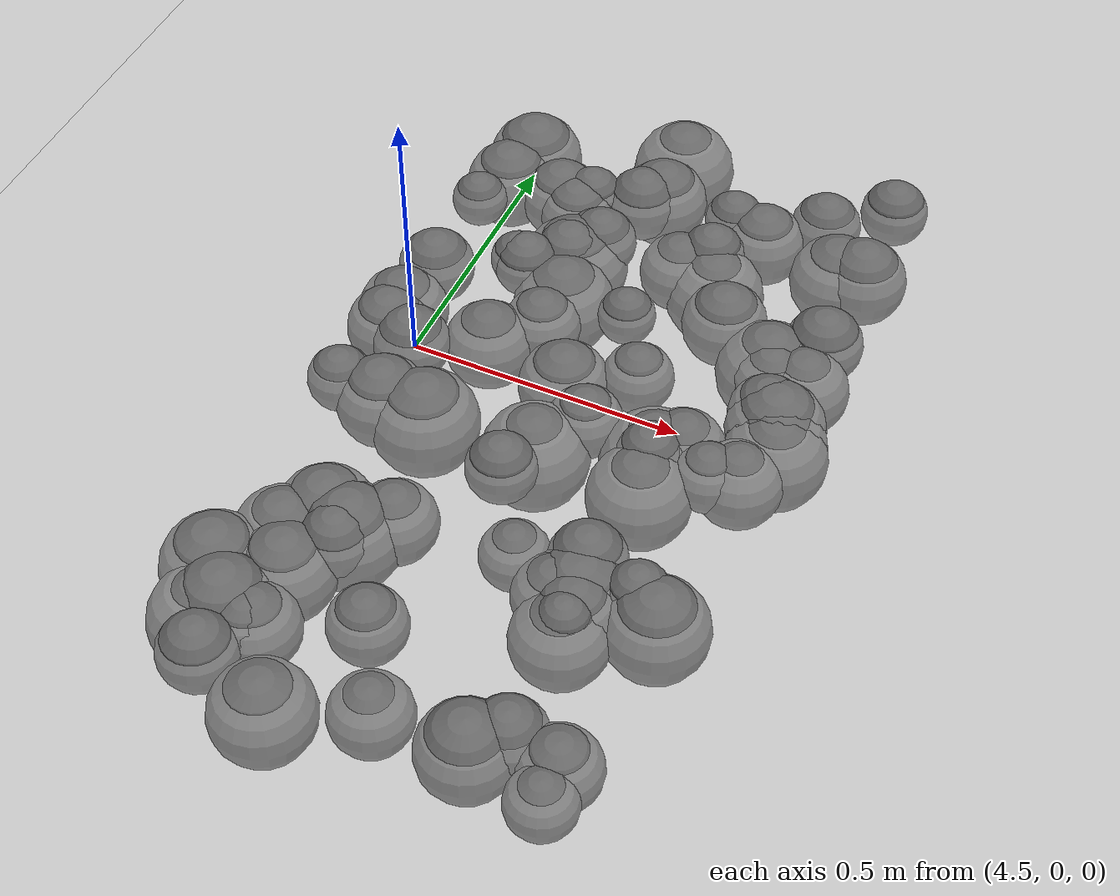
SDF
<sdf version="1.6">
 <world name="high_freq_world">
  <model name="ground_plane">
   <static>true</static>
   <link name="link">
    <collision name="collision">
     <geometry><plane><normal>0 0 1</normal><size>100 100</size></plane></geometry>
     <surface><friction><ode><mu>100.0</mu><mu2>100.0</mu2></ode></friction></surface>
    </collision>
    <visual name="visual">
     <geometry><plane><normal>0 0 1</normal><size>100 100</size></plane></geometry>
     <material><ambient>0.8 0.8 0.8 1</ambient><diffuse>0.8 0.8 0.8 1</diffuse></material>
    </visual>
   </link>
  </model>
  <model name="bump_2">
   <static>true</static>
   <pose>4.587 0.118 -0.067 0 0 0</pose>
   <link name="link">
    <collision name="collision">
     <geometry><sphere><radius>0.082</radius></sphere></geometry>
     <surface><friction><ode><mu>100.0</mu><mu2>100.0</mu2></ode></friction></surface>
    </collision>
    <visual name="visual">
     <geometry><sphere><radius>0.082</radius></sphere></geometry>
     <material><ambient>0.3 0.3 0.3 1</ambient><diffuse>0.4 0.4 0.4 1</diffuse></material>
    </visual>
   </link>
  </model>
  <model name="bump_4">
   <static>true</static>
   <pose>4.720 0.723 -0.085 0 0 0</pose>
   <link name="link">
    <collision name="collision">
     <geometry><sphere><radius>0.098</radius></sphere></geometry>
     <surface><friction><ode><mu>100.0</mu><mu2>100.0</mu2></ode></friction></surface>
    </collision>
    <visual name="visual">
     <geometry><sphere><radius>0.098</radius></sphere></geometry>
     <material><ambient>0.3 0.3 0.3 1</ambient><diffuse>0.4 0.4 0.4 1</diffuse></material>
    </visual>
   </link>
  </model>
  <model name="bump_5">
   <static>true</static>
   <pose>4.611 0.526 -0.031 0 0 0</pose>
   <link name="link">
    <collision name="collision">
     <geometry><sphere><radius>0.056</radius></sphere></geometry>
     <surface><friction><ode><mu>100.0</mu><mu2>100.0</mu2></ode></friction></surface>
    </collision>
    <visual name="visual">
     <geometry><sphere><radius>0.056</radius></sphere></geometry>
     <material><ambient>0.3 0.3 0.3 1</ambient><diffuse>0.4 0.4 0.4 1</diffuse></material>
    </visual>
   </link>
  </model>
  <model name="bump_6">
   <static>true</static>
   <pose>4.596 0.488 -0.052 0 0 0</pose>
   <link name="link">
    <collision name="collision">
     <geometry><sphere><radius>0.072</radius></sphere></geometry>
     <surface><friction><ode><mu>100.0</mu><mu2>100.0</mu2></ode></friction></surface>
    </collision>
    <visual name="visual">
     <geometry><sphere><radius>0.072</radius></sphere></geometry>
     <material><ambient>0.3 0.3 0.3 1</ambient><diffuse>0.4 0.4 0.4 1</diffuse></material>
    </visual>
   </link>
  </model>
  <model name="bump_8">
   <static>true</static>
   <pose>4.639 0.379 -0.080 0 0 0</pose>
   <link name="link">
    <collision name="collision">
     <geometry><sphere><radius>0.100</radius></sphere></geometry>
     <surface><friction><ode><mu>100.0</mu><mu2>100.0</mu2></ode></friction></surface>
    </collision>
    <visual name="visual">
     <geometry><sphere><radius>0.100</radius></sphere></geometry>
     <material><ambient>0.3 0.3 0.3 1</ambient><diffuse>0.4 0.4 0.4 1</diffuse></material>
    </visual>
   </link>
  </model>
  <model name="bump_12">
   <static>true</static>
   <pose>4.964 -0.004 -0.087 0 0 0</pose>
   <link name="link">
    <collision name="collision">
     <geometry><sphere><radius>0.099</radius></sphere></geometry>
     <surface><friction><ode><mu>100.0</mu><mu2>100.0</mu2></ode></friction></surface>
    </collision>
    <visual name="visual">
     <geometry><sphere><radius>0.099</radius></sphere></geometry>
     <material><ambient>0.3 0.3 0.3 1</ambient><diffuse>0.4 0.4 0.4 1</diffuse></material>
    </visual>
   </link>
  </model>
  <model name="bump_29">
   <static>true</static>
   <pose>4.982 -0.423 -0.026 0 0 0</pose>
   <link name="link">
    <collision name="collision">
     <geometry><sphere><radius>0.051</radius></sphere></geometry>
     <surface><friction><ode><mu>100.0</mu><mu2>100.0</mu2></ode></friction></surface>
    </collision>
    <visual name="visual">
     <geometry><sphere><radius>0.051</radius></sphere></geometry>
     <material><ambient>0.3 0.3 0.3 1</ambient><diffuse>0.4 0.4 0.4 1</diffuse></material>
    </visual>
   </link>
  </model>
  <model name="bump_30">
   <static>true</static>
   <pose>4.972 -0.091 -0.081 0 0 0</pose>
   <link name="link">
    <collision name="collision">
     <geometry><sphere><radius>0.094</radius></sphere></geometry>
     <surface><friction><ode><mu>100.0</mu><mu2>100.0</mu2></ode></friction></surface>
    </collision>
    <visual name="visual">
     <geometry><sphere><radius>0.094</radius></sphere></geometry>
     <material><ambient>0.3 0.3 0.3 1</ambient><diffuse>0.4 0.4 0.4 1</diffuse></material>
    </visual>
   </link>
  </model>
  <model name="bump_31">
   <static>true</static>
   <pose>4.906 0.418 -0.081 0 0 0</pose>
   <link name="link">
    <collision name="collision">
     <geometry><sphere><radius>0.092</radius></sphere></geometry>
     <surface><friction><ode><mu>100.0</mu><mu2>100.0</mu2></ode></friction></surface>
    </collision>
    <visual name="visual">
     <geometry><sphere><radius>0.092</radius></sphere></geometry>
     <material><ambient>0.3 0.3 0.3 1</ambient><diffuse>0.4 0.4 0.4 1</diffuse></material>
    </visual>
   </link>
  </model>
  <model name="bump_33">
   <static>true</static>
   <pose>4.525 -0.613 -0.062 0 0 0</pose>
   <link name="link">
    <collision name="collision">
     <geometry><sphere><radius>0.077</radius></sphere></geometry>
     <surface><friction><ode><mu>100.0</mu><mu2>100.0</mu2></ode></friction></surface>
    </collision>
    <visual name="visual">
     <geometry><sphere><radius>0.077</radius></sphere></geometry>
     <material><ambient>0.3 0.3 0.3 1</ambient><diffuse>0.4 0.4 0.4 1</diffuse></material>
    </visual>
   </link>
  </model>
  <model name="bump_35">
   <static>true</static>
   <pose>5.151 0.085 -0.081 0 0 0</pose>
   <link name="link">
    <collision name="collision">
     <geometry><sphere><radius>0.094</radius></sphere></geometry>
     <surface><friction><ode><mu>100.0</mu><mu2>100.0</mu2></ode></friction></surface>
    </collision>
    <visual name="visual">
     <geometry><sphere><radius>0.094</radius></sphere></geometry>
     <material><ambient>0.3 0.3 0.3 1</ambient><diffuse>0.4 0.4 0.4 1</diffuse></material>
    </visual>
   </link>
  </model>
  <model name="bump_38">
   <static>true</static>
   <pose>4.830 0.432 -0.063 0 0 0</pose>
   <link name="link">
    <collision name="collision">
     <geometry><sphere><radius>0.075</radius></sphere></geometry>
     <surface><friction><ode><mu>100.0</mu><mu2>100.0</mu2></ode></friction></surface>
    </collision>
    <visual name="visual">
     <geometry><sphere><radius>0.075</radius></sphere></geometry>
     <material><ambient>0.3 0.3 0.3 1</ambient><diffuse>0.4 0.4 0.4 1</diffuse></material>
    </visual>
   </link>
  </model>
  <model name="bump_46">
   <static>true</static>
   <pose>4.871 0.138 -0.050 0 0 0</pose>
   <link name="link">
    <collision name="collision">
     <geometry><sphere><radius>0.065</radius></sphere></geometry>
     <surface><friction><ode><mu>100.0</mu><mu2>100.0</mu2></ode></friction></surface>
    </collision>
    <visual name="visual">
     <geometry><sphere><radius>0.065</radius></sphere></geometry>
     <material><ambient>0.3 0.3 0.3 1</ambient><diffuse>0.4 0.4 0.4 1</diffuse></material>
    </visual>
   </link>
  </model>
  <model name="bump_51">
   <static>true</static>
   <pose>4.510 -0.489 -0.069 0 0 0</pose>
   <link name="link">
    <collision name="collision">
     <geometry><sphere><radius>0.088</radius></sphere></geometry>
     <surface><friction><ode><mu>100.0</mu><mu2>100.0</mu2></ode></friction></surface>
    </collision>
    <visual name="visual">
     <geometry><sphere><radius>0.088</radius></sphere></geometry>
     <material><ambient>0.3 0.3 0.3 1</ambient><diffuse>0.4 0.4 0.4 1</diffuse></material>
    </visual>
   </link>
  </model>
  <model name="bump_52">
   <static>true</static>
   <pose>4.798 0.255 -0.031 0 0 0</pose>
   <link name="link">
    <collision name="collision">
     <geometry><sphere><radius>0.053</radius></sphere></geometry>
     <surface><friction><ode><mu>100.0</mu><mu2>100.0</mu2></ode></friction></surface>
    </collision>
    <visual name="visual">
     <geometry><sphere><radius>0.053</radius></sphere></geometry>
     <material><ambient>0.3 0.3 0.3 1</ambient><diffuse>0.4 0.4 0.4 1</diffuse></material>
    </visual>
   </link>
  </model>
  <model name="bump_66">
   <static>true</static>
   <pose>5.149 0.722 -0.035 0 0 0</pose>
   <link name="link">
    <collision name="collision">
     <geometry><sphere><radius>0.063</radius></sphere></geometry>
     <surface><friction><ode><mu>100.0</mu><mu2>100.0</mu2></ode></friction></surface>
    </collision>
    <visual name="visual">
     <geometry><sphere><radius>0.063</radius></sphere></geometry>
     <material><ambient>0.3 0.3 0.3 1</ambient><diffuse>0.4 0.4 0.4 1</diffuse></material>
    </visual>
   </link>
  </model>
  <model name="bump_73">
   <static>true</static>
   <pose>4.769 -0.077 -0.086 0 0 0</pose>
   <link name="link">
    <collision name="collision">
     <geometry><sphere><radius>0.098</radius></sphere></geometry>
     <surface><friction><ode><mu>100.0</mu><mu2>100.0</mu2></ode></friction></surface>
    </collision>
    <visual name="visual">
     <geometry><sphere><radius>0.098</radius></sphere></geometry>
     <material><ambient>0.3 0.3 0.3 1</ambient><diffuse>0.4 0.4 0.4 1</diffuse></material>
    </visual>
   </link>
  </model>
  <model name="bump_85">
   <static>true</static>
   <pose>4.946 0.562 -0.059 0 0 0</pose>
   <link name="link">
    <collision name="collision">
     <geometry><sphere><radius>0.078</radius></sphere></geometry>
     <surface><friction><ode><mu>100.0</mu><mu2>100.0</mu2></ode></friction></surface>
    </collision>
    <visual name="visual">
     <geometry><sphere><radius>0.078</radius></sphere></geometry>
     <material><ambient>0.3 0.3 0.3 1</ambient><diffuse>0.4 0.4 0.4 1</diffuse></material>
    </visual>
   </link>
  </model>
  <model name="bump_89">
   <static>true</static>
   <pose>4.628 -0.326 -0.062 0 0 0</pose>
   <link name="link">
    <collision name="collision">
     <geometry><sphere><radius>0.075</radius></sphere></geometry>
     <surface><friction><ode><mu>100.0</mu><mu2>100.0</mu2></ode></friction></surface>
    </collision>
    <visual name="visual">
     <geometry><sphere><radius>0.075</radius></sphere></geometry>
     <material><ambient>0.3 0.3 0.3 1</ambient><diffuse>0.4 0.4 0.4 1</diffuse></material>
    </visual>
   </link>
  </model>
  <model name="bump_90">
   <static>true</static>
   <pose>5.084 -0.728 -0.051 0 0 0</pose>
   <link name="link">
    <collision name="collision">
     <geometry><sphere><radius>0.061</radius></sphere></geometry>
     <surface><friction><ode><mu>100.0</mu><mu2>100.0</mu2></ode></friction></surface>
    </collision>
    <visual name="visual">
     <geometry><sphere><radius>0.061</radius></sphere></geometry>
     <material><ambient>0.3 0.3 0.3 1</ambient><diffuse>0.4 0.4 0.4 1</diffuse></material>
    </visual>
   </link>
  </model>
  <model name="bump_95">
   <static>true</static>
   <pose>4.570 -0.380 -0.069 0 0 0</pose>
   <link name="link">
    <collision name="collision">
     <geometry><sphere><radius>0.095</radius></sphere></geometry>
     <surface><friction><ode><mu>100.0</mu><mu2>100.0</mu2></ode></friction></surface>
    </collision>
    <visual name="visual">
     <geometry><sphere><radius>0.095</radius></sphere></geometry>
     <material><ambient>0.3 0.3 0.3 1</ambient><diffuse>0.4 0.4 0.4 1</diffuse></material>
    </visual>
   </link>
  </model>
  <model name="bump_100">
   <static>true</static>
   <pose>4.431 -0.617 -0.088 0 0 0</pose>
   <link name="link">
    <collision name="collision">
     <geometry><sphere><radius>0.099</radius></sphere></geometry>
     <surface><friction><ode><mu>100.0</mu><mu2>100.0</mu2></ode></friction></surface>
    </collision>
    <visual name="visual">
     <geometry><sphere><radius>0.099</radius></sphere></geometry>
     <material><ambient>0.3 0.3 0.3 1</ambient><diffuse>0.4 0.4 0.4 1</diffuse></material>
    </visual>
   </link>
  </model>
  <model name="bump_108">
   <static>true</static>
   <pose>4.457 -0.597 -0.062 0 0 0</pose>
   <link name="link">
    <collision name="collision">
     <geometry><sphere><radius>0.091</radius></sphere></geometry>
     <surface><friction><ode><mu>100.0</mu><mu2>100.0</mu2></ode></friction></surface>
    </collision>
    <visual name="visual">
     <geometry><sphere><radius>0.091</radius></sphere></geometry>
     <material><ambient>0.3 0.3 0.3 1</ambient><diffuse>0.4 0.4 0.4 1</diffuse></material>
    </visual>
   </link>
  </model>
  <model name="bump_111">
   <static>true</static>
   <pose>4.981 -0.383 -0.058 0 0 0</pose>
   <link name="link">
    <collision name="collision">
     <geometry><sphere><radius>0.078</radius></sphere></geometry>
     <surface><friction><ode><mu>100.0</mu><mu2>100.0</mu2></ode></friction></surface>
    </collision>
    <visual name="visual">
     <geometry><sphere><radius>0.078</radius></sphere></geometry>
     <material><ambient>0.3 0.3 0.3 1</ambient><diffuse>0.4 0.4 0.4 1</diffuse></material>
    </visual>
   </link>
  </model>
  <model name="bump_113">
   <static>true</static>
   <pose>5.132 0.136 -0.064 0 0 0</pose>
   <link name="link">
    <collision name="collision">
     <geometry><sphere><radius>0.090</radius></sphere></geometry>
     <surface><friction><ode><mu>100.0</mu><mu2>100.0</mu2></ode></friction></surface>
    </collision>
    <visual name="visual">
     <geometry><sphere><radius>0.090</radius></sphere></geometry>
     <material><ambient>0.3 0.3 0.3 1</ambient><diffuse>0.4 0.4 0.4 1</diffuse></material>
    </visual>
   </link>
  </model>
  <model name="bump_114">
   <static>true</static>
   <pose>4.935 -0.359 -0.060 0 0 0</pose>
   <link name="link">
    <collision name="collision">
     <geometry><sphere><radius>0.073</radius></sphere></geometry>
     <surface><friction><ode><mu>100.0</mu><mu2>100.0</mu2></ode></friction></surface>
    </collision>
    <visual name="visual">
     <geometry><sphere><radius>0.073</radius></sphere></geometry>
     <material><ambient>0.3 0.3 0.3 1</ambient><diffuse>0.4 0.4 0.4 1</diffuse></material>
    </visual>
   </link>
  </model>
  <model name="bump_120">
   <static>true</static>
   <pose>4.635 0.369 -0.048 0 0 0</pose>
   <link name="link">
    <collision name="collision">
     <geometry><sphere><radius>0.073</radius></sphere></geometry>
     <surface><friction><ode><mu>100.0</mu><mu2>100.0</mu2></ode></friction></surface>
    </collision>
    <visual name="visual">
     <geometry><sphere><radius>0.073</radius></sphere></geometry>
     <material><ambient>0.3 0.3 0.3 1</ambient><diffuse>0.4 0.4 0.4 1</diffuse></material>
    </visual>
   </link>
  </model>
  <model name="bump_123">
   <static>true</static>
   <pose>4.451 0.611 -0.062 0 0 0</pose>
   <link name="link">
    <collision name="collision">
     <geometry><sphere><radius>0.090</radius></sphere></geometry>
     <surface><friction><ode><mu>100.0</mu><mu2>100.0</mu2></ode></friction></surface>
    </collision>
    <visual name="visual">
     <geometry><sphere><radius>0.090</radius></sphere></geometry>
     <material><ambient>0.3 0.3 0.3 1</ambient><diffuse>0.4 0.4 0.4 1</diffuse></material>
    </visual>
   </link>
  </model>
  <model name="bump_130">
   <static>true</static>
   <pose>4.663 0.277 -0.077 0 0 0</pose>
   <link name="link">
    <collision name="collision">
     <geometry><sphere><radius>0.094</radius></sphere></geometry>
     <surface><friction><ode><mu>100.0</mu><mu2>100.0</mu2></ode></friction></surface>
    </collision>
    <visual name="visual">
     <geometry><sphere><radius>0.094</radius></sphere></geometry>
     <material><ambient>0.3 0.3 0.3 1</ambient><diffuse>0.4 0.4 0.4 1</diffuse></material>
    </visual>
   </link>
  </model>
  <model name="bump_135">
   <static>true</static>
   <pose>4.405 -0.549 -0.040 0 0 0</pose>
   <link name="link">
    <collision name="collision">
     <geometry><sphere><radius>0.051</radius></sphere></geometry>
     <surface><friction><ode><mu>100.0</mu><mu2>100.0</mu2></ode></friction></surface>
    </collision>
    <visual name="visual">
     <geometry><sphere><radius>0.051</radius></sphere></geometry>
     <material><ambient>0.3 0.3 0.3 1</ambient><diffuse>0.4 0.4 0.4 1</diffuse></material>
    </visual>
   </link>
  </model>
  <model name="bump_142">
   <static>true</static>
   <pose>4.659 0.191 -0.055 0 0 0</pose>
   <link name="link">
    <collision name="collision">
     <geometry><sphere><radius>0.071</radius></sphere></geometry>
     <surface><friction><ode><mu>100.0</mu><mu2>100.0</mu2></ode></friction></surface>
    </collision>
    <visual name="visual">
     <geometry><sphere><radius>0.071</radius></sphere></geometry>
     <material><ambient>0.3 0.3 0.3 1</ambient><diffuse>0.4 0.4 0.4 1</diffuse></material>
    </visual>
   </link>
  </model>
  <model name="bump_144">
   <static>true</static>
   <pose>4.959 0.332 -0.056 0 0 0</pose>
   <link name="link">
    <collision name="collision">
     <geometry><sphere><radius>0.079</radius></sphere></geometry>
     <surface><friction><ode><mu>100.0</mu><mu2>100.0</mu2></ode></friction></surface>
    </collision>
    <visual name="visual">
     <geometry><sphere><radius>0.079</radius></sphere></geometry>
     <material><ambient>0.3 0.3 0.3 1</ambient><diffuse>0.4 0.4 0.4 1</diffuse></material>
    </visual>
   </link>
  </model>
  <model name="bump_147">
   <static>true</static>
   <pose>4.844 -0.315 -0.052 0 0 0</pose>
   <link name="link">
    <collision name="collision">
     <geometry><sphere><radius>0.062</radius></sphere></geometry>
     <surface><friction><ode><mu>100.0</mu><mu2>100.0</mu2></ode></friction></surface>
    </collision>
    <visual name="visual">
     <geometry><sphere><radius>0.062</radius></sphere></geometry>
     <material><ambient>0.3 0.3 0.3 1</ambient><diffuse>0.4 0.4 0.4 1</diffuse></material>
    </visual>
   </link>
  </model>
  <model name="bump_169">
   <static>true</static>
   <pose>4.408 0.076 -0.058 0 0 0</pose>
   <link name="link">
    <collision name="collision">
     <geometry><sphere><radius>0.079</radius></sphere></geometry>
     <surface><friction><ode><mu>100.0</mu><mu2>100.0</mu2></ode></friction></surface>
    </collision>
    <visual name="visual">
     <geometry><sphere><radius>0.079</radius></sphere></geometry>
     <material><ambient>0.3 0.3 0.3 1</ambient><diffuse>0.4 0.4 0.4 1</diffuse></material>
    </visual>
   </link>
  </model>
  <model name="bump_187">
   <static>true</static>
   <pose>4.990 -0.645 -0.043 0 0 0</pose>
   <link name="link">
    <collision name="collision">
     <geometry><sphere><radius>0.067</radius></sphere></geometry>
     <surface><friction><ode><mu>100.0</mu><mu2>100.0</mu2></ode></friction></surface>
    </collision>
    <visual name="visual">
     <geometry><sphere><radius>0.067</radius></sphere></geometry>
     <material><ambient>0.3 0.3 0.3 1</ambient><diffuse>0.4 0.4 0.4 1</diffuse></material>
    </visual>
   </link>
  </model>
  <model name="bump_196">
   <static>true</static>
   <pose>4.828 0.005 -0.051 0 0 0</pose>
   <link name="link">
    <collision name="collision">
     <geometry><sphere><radius>0.067</radius></sphere></geometry>
     <surface><friction><ode><mu>100.0</mu><mu2>100.0</mu2></ode></friction></surface>
    </collision>
    <visual name="visual">
     <geometry><sphere><radius>0.067</radius></sphere></geometry>
     <material><ambient>0.3 0.3 0.3 1</ambient><diffuse>0.4 0.4 0.4 1</diffuse></material>
    </visual>
   </link>
  </model>
  <model name="bump_198">
   <static>true</static>
   <pose>5.005 0.023 -0.064 0 0 0</pose>
   <link name="link">
    <collision name="collision">
     <geometry><sphere><radius>0.076</radius></sphere></geometry>
     <surface><friction><ode><mu>100.0</mu><mu2>100.0</mu2></ode></friction></surface>
    </collision>
    <visual name="visual">
     <geometry><sphere><radius>0.076</radius></sphere></geometry>
     <material><ambient>0.3 0.3 0.3 1</ambient><diffuse>0.4 0.4 0.4 1</diffuse></material>
    </visual>
   </link>
  </model>
  <model name="bump_211">
   <static>true</static>
   <pose>5.111 -0.349 -0.066 0 0 0</pose>
   <link name="link">
    <collision name="collision">
     <geometry><sphere><radius>0.092</radius></sphere></geometry>
     <surface><friction><ode><mu>100.0</mu><mu2>100.0</mu2></ode></friction></surface>
    </collision>
    <visual name="visual">
     <geometry><sphere><radius>0.092</radius></sphere></geometry>
     <material><ambient>0.3 0.3 0.3 1</ambient><diffuse>0.4 0.4 0.4 1</diffuse></material>
    </visual>
   </link>
  </model>
  <model name="bump_212">
   <static>true</static>
   <pose>4.673 0.425 -0.042 0 0 0</pose>
   <link name="link">
    <collision name="collision">
     <geometry><sphere><radius>0.066</radius></sphere></geometry>
     <surface><friction><ode><mu>100.0</mu><mu2>100.0</mu2></ode></friction></surface>
    </collision>
    <visual name="visual">
     <geometry><sphere><radius>0.066</radius></sphere></geometry>
     <material><ambient>0.3 0.3 0.3 1</ambient><diffuse>0.4 0.4 0.4 1</diffuse></material>
    </visual>
   </link>
  </model>
  <model name="bump_214">
   <static>true</static>
   <pose>4.437 0.526 -0.063 0 0 0</pose>
   <link name="link">
    <collision name="collision">
     <geometry><sphere><radius>0.085</radius></sphere></geometry>
     <surface><friction><ode><mu>100.0</mu><mu2>100.0</mu2></ode></friction></surface>
    </collision>
    <visual name="visual">
     <geometry><sphere><radius>0.085</radius></sphere></geometry>
     <material><ambient>0.3 0.3 0.3 1</ambient><diffuse>0.4 0.4 0.4 1</diffuse></material>
    </visual>
   </link>
  </model>
  <model name="bump_215">
   <static>true</static>
   <pose>4.881 0.577 -0.034 0 0 0</pose>
   <link name="link">
    <collision name="collision">
     <geometry><sphere><radius>0.056</radius></sphere></geometry>
     <surface><friction><ode><mu>100.0</mu><mu2>100.0</mu2></ode></friction></surface>
    </collision>
    <visual name="visual">
     <geometry><sphere><radius>0.056</radius></sphere></geometry>
     <material><ambient>0.3 0.3 0.3 1</ambient><diffuse>0.4 0.4 0.4 1</diffuse></material>
    </visual>
   </link>
  </model>
  <model name="bump_220">
   <static>true</static>
   <pose>4.513 -0.354 -0.071 0 0 0</pose>
   <link name="link">
    <collision name="collision">
     <geometry><sphere><radius>0.090</radius></sphere></geometry>
     <surface><friction><ode><mu>100.0</mu><mu2>100.0</mu2></ode></friction></surface>
    </collision>
    <visual name="visual">
     <geometry><sphere><radius>0.090</radius></sphere></geometry>
     <material><ambient>0.3 0.3 0.3 1</ambient><diffuse>0.4 0.4 0.4 1</diffuse></material>
    </visual>
   </link>
  </model>
  <model name="bump_231">
   <static>true</static>
   <pose>5.070 -0.027 -0.050 0 0 0</pose>
   <link name="link">
    <collision name="collision">
     <geometry><sphere><radius>0.063</radius></sphere></geometry>
     <surface><friction><ode><mu>100.0</mu><mu2>100.0</mu2></ode></friction></surface>
    </collision>
    <visual name="visual">
     <geometry><sphere><radius>0.063</radius></sphere></geometry>
     <material><ambient>0.3 0.3 0.3 1</ambient><diffuse>0.4 0.4 0.4 1</diffuse></material>
    </visual>
   </link>
  </model>
  <model name="bump_233">
   <static>true</static>
   <pose>4.417 0.431 -0.033 0 0 0</pose>
   <link name="link">
    <collision name="collision">
     <geometry><sphere><radius>0.052</radius></sphere></geometry>
     <surface><friction><ode><mu>100.0</mu><mu2>100.0</mu2></ode></friction></surface>
    </collision>
    <visual name="visual">
     <geometry><sphere><radius>0.052</radius></sphere></geometry>
     <material><ambient>0.3 0.3 0.3 1</ambient><diffuse>0.4 0.4 0.4 1</diffuse></material>
    </visual>
   </link>
  </model>
  <model name="bump_249">
   <static>true</static>
   <pose>4.702 0.555 -0.041 0 0 0</pose>
   <link name="link">
    <collision name="collision">
     <geometry><sphere><radius>0.070</radius></sphere></geometry>
     <surface><friction><ode><mu>100.0</mu><mu2>100.0</mu2></ode></friction></surface>
    </collision>
    <visual name="visual">
     <geometry><sphere><radius>0.070</radius></sphere></geometry>
     <material><ambient>0.3 0.3 0.3 1</ambient><diffuse>0.4 0.4 0.4 1</diffuse></material>
    </visual>
   </link>
  </model>
  <model name="bump_265">
   <static>true</static>
   <pose>4.468 0.045 -0.045 0 0 0</pose>
   <link name="link">
    <collision name="collision">
     <geometry><sphere><radius>0.071</radius></sphere></geometry>
     <surface><friction><ode><mu>100.0</mu><mu2>100.0</mu2></ode></friction></surface>
    </collision>
    <visual name="visual">
     <geometry><sphere><radius>0.071</radius></sphere></geometry>
     <material><ambient>0.3 0.3 0.3 1</ambient><diffuse>0.4 0.4 0.4 1</diffuse></material>
    </visual>
   </link>
  </model>
  <model name="bump_269">
   <static>true</static>
   <pose>4.557 0.308 -0.029 0 0 0</pose>
   <link name="link">
    <collision name="collision">
     <geometry><sphere><radius>0.052</radius></sphere></geometry>
     <surface><friction><ode><mu>100.0</mu><mu2>100.0</mu2></ode></friction></surface>
    </collision>
    <visual name="visual">
     <geometry><sphere><radius>0.052</radius></sphere></geometry>
     <material><ambient>0.3 0.3 0.3 1</ambient><diffuse>0.4 0.4 0.4 1</diffuse></material>
    </visual>
   </link>
  </model>
  <model name="bump_272">
   <static>true</static>
   <pose>4.468 -0.420 -0.078 0 0 0</pose>
   <link name="link">
    <collision name="collision">
     <geometry><sphere><radius>0.091</radius></sphere></geometry>
     <surface><friction><ode><mu>100.0</mu><mu2>100.0</mu2></ode></friction></surface>
    </collision>
    <visual name="visual">
     <geometry><sphere><radius>0.091</radius></sphere></geometry>
     <material><ambient>0.3 0.3 0.3 1</ambient><diffuse>0.4 0.4 0.4 1</diffuse></material>
    </visual>
   </link>
  </model>
  <model name="bump_278">
   <static>true</static>
   <pose>5.084 0.239 -0.060 0 0 0</pose>
   <link name="link">
    <collision name="collision">
     <geometry><sphere><radius>0.071</radius></sphere></geometry>
     <surface><friction><ode><mu>100.0</mu><mu2>100.0</mu2></ode></friction></surface>
    </collision>
    <visual name="visual">
     <geometry><sphere><radius>0.071</radius></sphere></geometry>
     <material><ambient>0.3 0.3 0.3 1</ambient><diffuse>0.4 0.4 0.4 1</diffuse></material>
    </visual>
   </link>
  </model>
  <model name="bump_285">
   <static>true</static>
   <pose>5.145 0.108 -0.074 0 0 0</pose>
   <link name="link">
    <collision name="collision">
     <geometry><sphere><radius>0.090</radius></sphere></geometry>
     <surface><friction><ode><mu>100.0</mu><mu2>100.0</mu2></ode></friction></surface>
    </collision>
    <visual name="visual">
     <geometry><sphere><radius>0.090</radius></sphere></geometry>
     <material><ambient>0.3 0.3 0.3 1</ambient><diffuse>0.4 0.4 0.4 1</diffuse></material>
    </visual>
   </link>
  </model>
  <model name="bump_290">
   <static>true</static>
   <pose>4.397 -0.089 -0.040 0 0 0</pose>
   <link name="link">
    <collision name="collision">
     <geometry><sphere><radius>0.060</radius></sphere></geometry>
     <surface><friction><ode><mu>100.0</mu><mu2>100.0</mu2></ode></friction></surface>
    </collision>
    <visual name="visual">
     <geometry><sphere><radius>0.060</radius></sphere></geometry>
     <material><ambient>0.3 0.3 0.3 1</ambient><diffuse>0.4 0.4 0.4 1</diffuse></material>
    </visual>
   </link>
  </model>
  <model name="bump_306">
   <static>true</static>
   <pose>4.728 0.597 -0.062 0 0 0</pose>
   <link name="link">
    <collision name="collision">
     <geometry><sphere><radius>0.084</radius></sphere></geometry>
     <surface><friction><ode><mu>100.0</mu><mu2>100.0</mu2></ode></friction></surface>
    </collision>
    <visual name="visual">
     <geometry><sphere><radius>0.084</radius></sphere></geometry>
     <material><ambient>0.3 0.3 0.3 1</ambient><diffuse>0.4 0.4 0.4 1</diffuse></material>
    </visual>
   </link>
  </model>
  <model name="bump_307">
   <static>true</static>
   <pose>5.042 0.639 -0.043 0 0 0</pose>
   <link name="link">
    <collision name="collision">
     <geometry><sphere><radius>0.066</radius></sphere></geometry>
     <surface><friction><ode><mu>100.0</mu><mu2>100.0</mu2></ode></friction></surface>
    </collision>
    <visual name="visual">
     <geometry><sphere><radius>0.066</radius></sphere></geometry>
     <material><ambient>0.3 0.3 0.3 1</ambient><diffuse>0.4 0.4 0.4 1</diffuse></material>
    </visual>
   </link>
  </model>
  <model name="bump_313">
   <static>true</static>
   <pose>5.102 0.538 -0.071 0 0 0</pose>
   <link name="link">
    <collision name="collision">
     <geometry><sphere><radius>0.088</radius></sphere></geometry>
     <surface><friction><ode><mu>100.0</mu><mu2>100.0</mu2></ode></friction></surface>
    </collision>
    <visual name="visual">
     <geometry><sphere><radius>0.088</radius></sphere></geometry>
     <material><ambient>0.3 0.3 0.3 1</ambient><diffuse>0.4 0.4 0.4 1</diffuse></material>
    </visual>
   </link>
  </model>
  <model name="bump_314">
   <static>true</static>
   <pose>4.965 -0.032 -0.036 0 0 0</pose>
   <link name="link">
    <collision name="collision">
     <geometry><sphere><radius>0.060</radius></sphere></geometry>
     <surface><friction><ode><mu>100.0</mu><mu2>100.0</mu2></ode></friction></surface>
    </collision>
    <visual name="visual">
     <geometry><sphere><radius>0.060</radius></sphere></geometry>
     <material><ambient>0.3 0.3 0.3 1</ambient><diffuse>0.4 0.4 0.4 1</diffuse></material>
    </visual>
   </link>
  </model>
  <model name="bump_317">
   <static>true</static>
   <pose>5.118 -0.005 -0.069 0 0 0</pose>
   <link name="link">
    <collision name="collision">
     <geometry><sphere><radius>0.079</radius></sphere></geometry>
     <surface><friction><ode><mu>100.0</mu><mu2>100.0</mu2></ode></friction></surface>
    </collision>
    <visual name="visual">
     <geometry><sphere><radius>0.079</radius></sphere></geometry>
     <material><ambient>0.3 0.3 0.3 1</ambient><diffuse>0.4 0.4 0.4 1</diffuse></material>
    </visual>
   </link>
  </model>
  <model name="bump_322">
   <static>true</static>
   <pose>4.879 0.469 -0.032 0 0 0</pose>
   <link name="link">
    <collision name="collision">
     <geometry><sphere><radius>0.060</radius></sphere></geometry>
     <surface><friction><ode><mu>100.0</mu><mu2>100.0</mu2></ode></friction></surface>
    </collision>
    <visual name="visual">
     <geometry><sphere><radius>0.060</radius></sphere></geometry>
     <material><ambient>0.3 0.3 0.3 1</ambient><diffuse>0.4 0.4 0.4 1</diffuse></material>
    </visual>
   </link>
  </model>
  <model name="bump_329">
   <static>true</static>
   <pose>4.419 0.243 -0.045 0 0 0</pose>
   <link name="link">
    <collision name="collision">
     <geometry><sphere><radius>0.071</radius></sphere></geometry>
     <surface><friction><ode><mu>100.0</mu><mu2>100.0</mu2></ode></friction></surface>
    </collision>
    <visual name="visual">
     <geometry><sphere><radius>0.071</radius></sphere></geometry>
     <material><ambient>0.3 0.3 0.3 1</ambient><diffuse>0.4 0.4 0.4 1</diffuse></material>
    </visual>
   </link>
  </model>
  <model name="bump_331">
   <static>true</static>
   <pose>4.662 0.430 -0.043 0 0 0</pose>
   <link name="link">
    <collision name="collision">
     <geometry><sphere><radius>0.060</radius></sphere></geometry>
     <surface><friction><ode><mu>100.0</mu><mu2>100.0</mu2></ode></friction></surface>
    </collision>
    <visual name="visual">
     <geometry><sphere><radius>0.060</radius></sphere></geometry>
     <material><ambient>0.3 0.3 0.3 1</ambient><diffuse>0.4 0.4 0.4 1</diffuse></material>
    </visual>
   </link>
  </model>
  <model name="bump_336">
   <static>true</static>
   <pose>4.475 -0.706 -0.040 0 0 0</pose>
   <link name="link">
    <collision name="collision">
     <geometry><sphere><radius>0.069</radius></sphere></geometry>
     <surface><friction><ode><mu>100.0</mu><mu2>100.0</mu2></ode></friction></surface>
    </collision>
    <visual name="visual">
     <geometry><sphere><radius>0.069</radius></sphere></geometry>
     <material><ambient>0.3 0.3 0.3 1</ambient><diffuse>0.4 0.4 0.4 1</diffuse></material>
    </visual>
   </link>
  </model>
  <model name="bump_337">
   <static>true</static>
   <pose>4.576 0.304 -0.032 0 0 0</pose>
   <link name="link">
    <collision name="collision">
     <geometry><sphere><radius>0.061</radius></sphere></geometry>
     <surface><friction><ode><mu>100.0</mu><mu2>100.0</mu2></ode></friction></surface>
    </collision>
    <visual name="visual">
     <geometry><sphere><radius>0.061</radius></sphere></geometry>
     <material><ambient>0.3 0.3 0.3 1</ambient><diffuse>0.4 0.4 0.4 1</diffuse></material>
    </visual>
   </link>
  </model>
  <model name="bump_345">
   <static>true</static>
   <pose>5.082 -0.659 -0.056 0 0 0</pose>
   <link name="link">
    <collision name="collision">
     <geometry><sphere><radius>0.072</radius></sphere></geometry>
     <surface><friction><ode><mu>100.0</mu><mu2>100.0</mu2></ode></friction></surface>
    </collision>
    <visual name="visual">
     <geometry><sphere><radius>0.072</radius></sphere></geometry>
     <material><ambient>0.3 0.3 0.3 1</ambient><diffuse>0.4 0.4 0.4 1</diffuse></material>
    </visual>
   </link>
  </model>
  <model name="bump_377">
   <static>true</static>
   <pose>5.150 0.540 -0.055 0 0 0</pose>
   <link name="link">
    <collision name="collision">
     <geometry><sphere><radius>0.082</radius></sphere></geometry>
     <surface><friction><ode><mu>100.0</mu><mu2>100.0</mu2></ode></friction></surface>
    </collision>
    <visual name="visual">
     <geometry><sphere><radius>0.082</radius></sphere></geometry>
     <material><ambient>0.3 0.3 0.3 1</ambient><diffuse>0.4 0.4 0.4 1</diffuse></material>
    </visual>
   </link>
  </model>
  <model name="bump_385">
   <static>true</static>
   <pose>4.961 -0.283 -0.040 0 0 0</pose>
   <link name="link">
    <collision name="collision">
     <geometry><sphere><radius>0.069</radius></sphere></geometry>
     <surface><friction><ode><mu>100.0</mu><mu2>100.0</mu2></ode></friction></surface>
    </collision>
    <visual name="visual">
     <geometry><sphere><radius>0.069</radius></sphere></geometry>
     <material><ambient>0.3 0.3 0.3 1</ambient><diffuse>0.4 0.4 0.4 1</diffuse></material>
    </visual>
   </link>
  </model>
  <model name="bump_387">
   <static>true</static>
   <pose>4.568 -0.417 -0.039 0 0 0</pose>
   <link name="link">
    <collision name="collision">
     <geometry><sphere><radius>0.066</radius></sphere></geometry>
     <surface><friction><ode><mu>100.0</mu><mu2>100.0</mu2></ode></friction></surface>
    </collision>
    <visual name="visual">
     <geometry><sphere><radius>0.066</radius></sphere></geometry>
     <material><ambient>0.3 0.3 0.3 1</ambient><diffuse>0.4 0.4 0.4 1</diffuse></material>
    </visual>
   </link>
  </model>
  <model name="bump_389">
   <static>true</static>
   <pose>4.970 -0.338 -0.075 0 0 0</pose>
   <link name="link">
    <collision name="collision">
     <geometry><sphere><radius>0.096</radius></sphere></geometry>
     <surface><friction><ode><mu>100.0</mu><mu2>100.0</mu2></ode></friction></surface>
    </collision>
    <visual name="visual">
     <geometry><sphere><radius>0.096</radius></sphere></geometry>
     <material><ambient>0.3 0.3 0.3 1</ambient><diffuse>0.4 0.4 0.4 1</diffuse></material>
    </visual>
   </link>
  </model>
  <model name="bump_392">
   <static>true</static>
   <pose>5.143 0.248 -0.071 0 0 0</pose>
   <link name="link">
    <collision name="collision">
     <geometry><sphere><radius>0.082</radius></sphere></geometry>
     <surface><friction><ode><mu>100.0</mu><mu2>100.0</mu2></ode></friction></surface>
    </collision>
    <visual name="visual">
     <geometry><sphere><radius>0.082</radius></sphere></geometry>
     <material><ambient>0.3 0.3 0.3 1</ambient><diffuse>0.4 0.4 0.4 1</diffuse></material>
    </visual>
   </link>
  </model>
  <model name="bump_408">
   <static>true</static>
   <pose>4.563 -0.092 -0.077 0 0 0</pose>
   <link name="link">
    <collision name="collision">
     <geometry><sphere><radius>0.099</radius></sphere></geometry>
     <surface><friction><ode><mu>100.0</mu><mu2>100.0</mu2></ode></friction></surface>
    </collision>
    <visual name="visual">
     <geometry><sphere><radius>0.099</radius></sphere></geometry>
     <material><ambient>0.3 0.3 0.3 1</ambient><diffuse>0.4 0.4 0.4 1</diffuse></material>
    </visual>
   </link>
  </model>
  <model name="bump_410">
   <static>true</static>
   <pose>4.747 -0.163 -0.036 0 0 0</pose>
   <link name="link">
    <collision name="collision">
     <geometry><sphere><radius>0.064</radius></sphere></geometry>
     <surface><friction><ode><mu>100.0</mu><mu2>100.0</mu2></ode></friction></surface>
    </collision>
    <visual name="visual">
     <geometry><sphere><radius>0.064</radius></sphere></geometry>
     <material><ambient>0.3 0.3 0.3 1</ambient><diffuse>0.4 0.4 0.4 1</diffuse></material>
    </visual>
   </link>
  </model>
  <model name="bump_411">
   <static>true</static>
   <pose>4.612 -0.747 -0.073 0 0 0</pose>
   <link name="link">
    <collision name="collision">
     <geometry><sphere><radius>0.090</radius></sphere></geometry>
     <surface><friction><ode><mu>100.0</mu><mu2>100.0</mu2></ode></friction></surface>
    </collision>
    <visual name="visual">
     <geometry><sphere><radius>0.090</radius></sphere></geometry>
     <material><ambient>0.3 0.3 0.3 1</ambient><diffuse>0.4 0.4 0.4 1</diffuse></material>
    </visual>
   </link>
  </model>
  <model name="bump_422">
   <static>true</static>
   <pose>4.549 0.519 -0.056 0 0 0</pose>
   <link name="link">
    <collision name="collision">
     <geometry><sphere><radius>0.077</radius></sphere></geometry>
     <surface><friction><ode><mu>100.0</mu><mu2>100.0</mu2></ode></friction></surface>
    </collision>
    <visual name="visual">
     <geometry><sphere><radius>0.077</radius></sphere></geometry>
     <material><ambient>0.3 0.3 0.3 1</ambient><diffuse>0.4 0.4 0.4 1</diffuse></material>
    </visual>
   </link>
  </model>
  <model name="bump_429">
   <static>true</static>
   <pose>5.145 0.343 -0.041 0 0 0</pose>
   <link name="link">
    <collision name="collision">
     <geometry><sphere><radius>0.071</radius></sphere></geometry>
     <surface><friction><ode><mu>100.0</mu><mu2>100.0</mu2></ode></friction></surface>
    </collision>
    <visual name="visual">
     <geometry><sphere><radius>0.071</radius></sphere></geometry>
     <material><ambient>0.3 0.3 0.3 1</ambient><diffuse>0.4 0.4 0.4 1</diffuse></material>
    </visual>
   </link>
  </model>
  <model name="bump_441">
   <static>true</static>
   <pose>4.976 -0.426 -0.073 0 0 0</pose>
   <link name="link">
    <collision name="collision">
     <geometry><sphere><radius>0.086</radius></sphere></geometry>
     <surface><friction><ode><mu>100.0</mu><mu2>100.0</mu2></ode></friction></surface>
    </collision>
    <visual name="visual">
     <geometry><sphere><radius>0.086</radius></sphere></geometry>
     <material><ambient>0.3 0.3 0.3 1</ambient><diffuse>0.4 0.4 0.4 1</diffuse></material>
    </visual>
   </link>
  </model>
  <model name="bump_442">
   <static>true</static>
   <pose>4.479 -0.088 -0.063 0 0 0</pose>
   <link name="link">
    <collision name="collision">
     <geometry><sphere><radius>0.085</radius></sphere></geometry>
     <surface><friction><ode><mu>100.0</mu><mu2>100.0</mu2></ode></friction></surface>
    </collision>
    <visual name="visual">
     <geometry><sphere><radius>0.085</radius></sphere></geometry>
     <material><ambient>0.3 0.3 0.3 1</ambient><diffuse>0.4 0.4 0.4 1</diffuse></material>
    </visual>
   </link>
  </model>
  <model name="bump_444">
   <static>true</static>
   <pose>4.406 0.132 -0.067 0 0 0</pose>
   <link name="link">
    <collision name="collision">
     <geometry><sphere><radius>0.083</radius></sphere></geometry>
     <surface><friction><ode><mu>100.0</mu><mu2>100.0</mu2></ode></friction></surface>
    </collision>
    <visual name="visual">
     <geometry><sphere><radius>0.083</radius></sphere></geometry>
     <material><ambient>0.3 0.3 0.3 1</ambient><diffuse>0.4 0.4 0.4 1</diffuse></material>
    </visual>
   </link>
  </model>
  <model name="bump_445">
   <static>true</static>
   <pose>4.754 0.079 -0.063 0 0 0</pose>
   <link name="link">
    <collision name="collision">
     <geometry><sphere><radius>0.083</radius></sphere></geometry>
     <surface><friction><ode><mu>100.0</mu><mu2>100.0</mu2></ode></friction></surface>
    </collision>
    <visual name="visual">
     <geometry><sphere><radius>0.083</radius></sphere></geometry>
     <material><ambient>0.3 0.3 0.3 1</ambient><diffuse>0.4 0.4 0.4 1</diffuse></material>
    </visual>
   </link>
  </model>
  <model name="bump_450">
   <static>true</static>
   <pose>4.517 -0.623 -0.049 0 0 0</pose>
   <link name="link">
    <collision name="collision">
     <geometry><sphere><radius>0.064</radius></sphere></geometry>
     <surface><friction><ode><mu>100.0</mu><mu2>100.0</mu2></ode></friction></surface>
    </collision>
    <visual name="visual">
     <geometry><sphere><radius>0.064</radius></sphere></geometry>
     <material><ambient>0.3 0.3 0.3 1</ambient><diffuse>0.4 0.4 0.4 1</diffuse></material>
    </visual>
   </link>
  </model>
  <model name="bump_451">
   <static>true</static>
   <pose>4.397 -0.525 -0.074 0 0 0</pose>
   <link name="link">
    <collision name="collision">
     <geometry><sphere><radius>0.096</radius></sphere></geometry>
     <surface><friction><ode><mu>100.0</mu><mu2>100.0</mu2></ode></friction></surface>
    </collision>
    <visual name="visual">
     <geometry><sphere><radius>0.096</radius></sphere></geometry>
     <material><ambient>0.3 0.3 0.3 1</ambient><diffuse>0.4 0.4 0.4 1</diffuse></material>
    </visual>
   </link>
  </model>
  <model name="bump_462">
   <static>true</static>
   <pose>4.939 -0.688 -0.057 0 0 0</pose>
   <link name="link">
    <collision name="collision">
     <geometry><sphere><radius>0.085</radius></sphere></geometry>
     <surface><friction><ode><mu>100.0</mu><mu2>100.0</mu2></ode></friction></surface>
    </collision>
    <visual name="visual">
     <geometry><sphere><radius>0.085</radius></sphere></geometry>
     <material><ambient>0.3 0.3 0.3 1</ambient><diffuse>0.4 0.4 0.4 1</diffuse></material>
    </visual>
   </link>
  </model>
  <model name="bump_470">
   <static>true</static>
   <pose>4.773 -0.687 -0.061 0 0 0</pose>
   <link name="link">
    <collision name="collision">
     <geometry><sphere><radius>0.072</radius></sphere></geometry>
     <surface><friction><ode><mu>100.0</mu><mu2>100.0</mu2></ode></friction></surface>
    </collision>
    <visual name="visual">
     <geometry><sphere><radius>0.072</radius></sphere></geometry>
     <material><ambient>0.3 0.3 0.3 1</ambient><diffuse>0.4 0.4 0.4 1</diffuse></material>
    </visual>
   </link>
  </model>
  <model name="bump_483">
   <static>true</static>
   <pose>5.066 -0.319 -0.031 0 0 0</pose>
   <link name="link">
    <collision name="collision">
     <geometry><sphere><radius>0.057</radius></sphere></geometry>
     <surface><friction><ode><mu>100.0</mu><mu2>100.0</mu2></ode></friction></surface>
    </collision>
    <visual name="visual">
     <geometry><sphere><radius>0.057</radius></sphere></geometry>
     <material><ambient>0.3 0.3 0.3 1</ambient><diffuse>0.4 0.4 0.4 1</diffuse></material>
    </visual>
   </link>
  </model>
  <model name="bump_486">
   <static>true</static>
   <pose>5.111 0.152 -0.051 0 0 0</pose>
   <link name="link">
    <collision name="collision">
     <geometry><sphere><radius>0.072</radius></sphere></geometry>
     <surface><friction><ode><mu>100.0</mu><mu2>100.0</mu2></ode></friction></surface>
    </collision>
    <visual name="visual">
     <geometry><sphere><radius>0.072</radius></sphere></geometry>
     <material><ambient>0.3 0.3 0.3 1</ambient><diffuse>0.4 0.4 0.4 1</diffuse></material>
    </visual>
   </link>
  </model>
  <model name="bump_488">
   <static>true</static>
   <pose>5.067 0.275 -0.082 0 0 0</pose>
   <link name="link">
    <collision name="collision">
     <geometry><sphere><radius>0.096</radius></sphere></geometry>
     <surface><friction><ode><mu>100.0</mu><mu2>100.0</mu2></ode></friction></surface>
    </collision>
    <visual name="visual">
     <geometry><sphere><radius>0.096</radius></sphere></geometry>
     <material><ambient>0.3 0.3 0.3 1</ambient><diffuse>0.4 0.4 0.4 1</diffuse></material>
    </visual>
   </link>
  </model>
  <model name="bump_490">
   <static>true</static>
   <pose>4.691 -0.543 -0.049 0 0 0</pose>
   <link name="link">
    <collision name="collision">
     <geometry><sphere><radius>0.069</radius></sphere></geometry>
     <surface><friction><ode><mu>100.0</mu><mu2>100.0</mu2></ode></friction></surface>
    </collision>
    <visual name="visual">
     <geometry><sphere><radius>0.069</radius></sphere></geometry>
     <material><ambient>0.3 0.3 0.3 1</ambient><diffuse>0.4 0.4 0.4 1</diffuse></material>
    </visual>
   </link>
  </model>
 </world>
</sdf>
